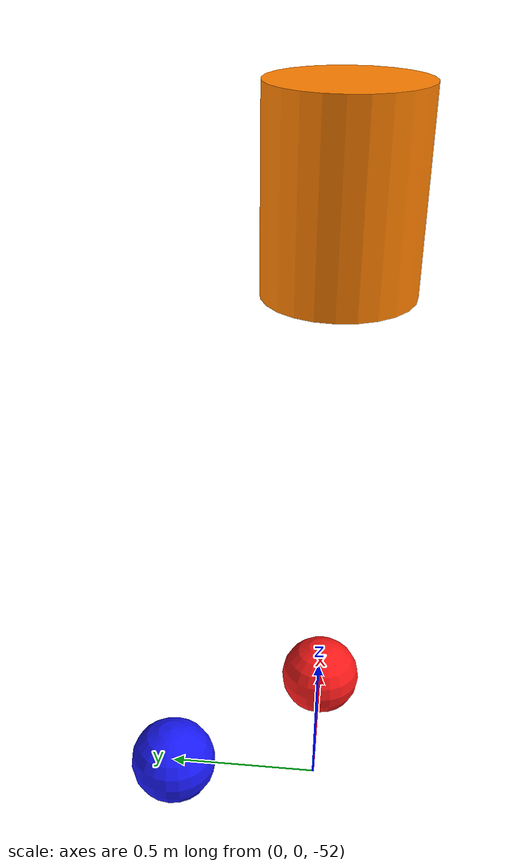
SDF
<?xml version="1.0" ?>
<sdf version="1.9">
  <world name="antarctic_ocean">

    <physics name="10ms" type="ignored">
      <max_step_size>0.01</max_step_size>
      <real_time_factor>1.0</real_time_factor>
    </physics>

    <!-- World systems. NO buoyancy, NO hydrodynamics. -->
    <plugin filename="gz-sim-physics-system"
            name="gz::sim::systems::Physics"/>
    <plugin filename="gz-sim-user-commands-system"
            name="gz::sim::systems::UserCommands"/>
    <plugin filename="gz-sim-scene-broadcaster-system"
            name="gz::sim::systems::SceneBroadcaster"/>
    <plugin filename="gz-sim-sensors-system"
            name="gz::sim::systems::Sensors">
      <render_engine>ogre2</render_engine>
    </plugin>

    <plugin filename="gz-sim-air-pressure-system"
            name="gz::sim::systems::AirPressure"/>

    <!-- Pose publisher: publishes every model's pose at 20 Hz so the
         depth helper can derive depth from the buoy's true Z. -->
    <plugin filename="gz-sim-pose-publisher-system"
            name="gz::sim::systems::PosePublisher">
      <publish_link_pose>false</publish_link_pose>
      <publish_model_pose>true</publish_model_pose>
      <publish_nested_model_pose>true</publish_nested_model_pose>
      <use_pose_vector_msg>false</use_pose_vector_msg>
      <update_frequency>20</update_frequency>
    </plugin>

    <scene>
      <ambient>0.0 0.02 0.08 1</ambient>
      <background>0.0 0.01 0.06 1</background>
      <fog>
        <type>exponential</type>
        <color>0.0 0.03 0.12 1</color>
        <density>0.07</density>
      </fog>
      <grid>false</grid>
    </scene>

    <!-- A weak overhead "surface light" so the upper water column is
         brighter than depth, mimicking attenuating downwelling PAR.
         Position is well above the buoy's operating depth. -->
    <light name="surface_sun" type="directional">
      <pose>0 0 50 0 0 0</pose>
      <diffuse>0.3 0.4 0.5 1</diffuse>
      <specular>0.1 0.15 0.2 1</specular>
      <direction>0 0 -1</direction>
      <cast_shadows>false</cast_shadows>
    </light>

    <include>
      <pose>0 0 -50 0 0 0</pose>
      <uri>model://sandy_buoy</uri>
    </include>

    <model name="phantom_red">
      <static>true</static>
      <pose>0.5 0 -52 0 0 0</pose>
      <link name="link">
        <visual name="visual">
          <geometry><sphere><radius>0.15</radius></sphere></geometry>
          <material>
            <ambient>1.0 0.05 0.05 1</ambient>
            <diffuse>1.0 0.1 0.1 1</diffuse>
            <emissive>0.8 0.0 0.0 1</emissive>
          </material>
        </visual>
      </link>
    </model>

    <model name="phantom_blue">
      <static>true</static>
      <pose>0 0.5 -52 0 0 0</pose>
      <link name="link">
        <visual name="visual">
          <geometry><sphere><radius>0.15</radius></sphere></geometry>
          <material>
            <ambient>0.05 0.05 1.0 1</ambient>
            <diffuse>0.1 0.1 1.0 1</diffuse>
            <emissive>0.0 0.0 0.8 1</emissive>
          </material>
        </visual>
      </link>
    </model>

    <!-- Optional: a reference grid plane far below for visual orientation
         when manually flying the camera around. Not visible to the buoy's
         sensors at typical operating depths. -->
    <model name="seafloor_ref">
      <static>true</static>
      <pose>0 0 -200 0 0 0</pose>
      <link name="link">
        <visual name="visual">
          <geometry><plane><normal>0 0 1</normal><size>100 100</size></plane></geometry>
          <material>
            <ambient>0.02 0.02 0.03 1</ambient>
            <diffuse>0.02 0.02 0.03 1</diffuse>
          </material>
        </visual>
      </link>
    </model>

  </world>
</sdf>

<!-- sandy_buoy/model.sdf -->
<sdf version="1.9">
  <model name="sandy_buoy">

    <!-- Kinematic: no physics, pose set externally. This is INTENTIONAL
         for sensor testing. Buoyancy/drag come back when you switch to
         dynamics testing later. -->
    <static>true</static>

    <link name="base_link">

      <!-- Visual: orange cylinder so you can see it in the GUI. -->
      <visual name="body_visual">
        <geometry>
          <cylinder><radius>0.2</radius><length>0.5</length></cylinder>
        </geometry>
        <material>
          <ambient>1.0 0.5 0.0 1</ambient>
          <diffuse>1.0 0.5 0.0 1</diffuse>
        </material>
      </visual>

      <sensor name="as7341_down" type="camera">
        <pose>0.05 0 -0.25  0 1.5708 0</pose>
        <camera>
          <horizontal_fov>1.047</horizontal_fov>  <!-- 60 deg -->
          <image>
            <width>8</width>
            <height>8</height>
            <format>R8G8B8</format>
          </image>
          <clip><near>0.05</near><far>50</far></clip>
        </camera>
        <always_on>1</always_on>
        <update_rate>10</update_rate>
        <visualize>true</visualize>
        <topic>sandy/as7341_down</topic>
      </sensor>

      <sensor name="photodiode_side" type="camera">
        <pose>0.2 0 0  0 0 0</pose>
        <camera>
          <horizontal_fov>0.2</horizontal_fov>
          <image>
            <width>4</width>
            <height>4</height>
            <format>R8G8B8</format>
          </image>
          <clip><near>0.05</near><far>20</far></clip>
        </camera>
        <always_on>1</always_on>
        <update_rate>10</update_rate>
        <visualize>true</visualize>
        <topic>sandy/photodiode_side</topic>
      </sensor>

      <light name="bpw34_excitation_led" type="spot">
        <pose>0.2 0 0  0 0 0</pose>
        <diffuse>0.1 0.3 1.0 1</diffuse>
        <specular>0.1 0.3 1.0 1</specular>
        <attenuation>
          <range>3</range>
          <constant>0.2</constant>
          <linear>0.3</linear>
        </attenuation>
        <spot>
          <inner_angle>0.15</inner_angle>
          <outer_angle>0.4</outer_angle>
          <falloff>1.0</falloff>
        </spot>
      </light>

      <!-- Pressure sensor placeholder. See note at top — actual depth
           is published by the helper node. Kept here so the topic exists
           for the bridge if you want to verify the pipeline. -->
      <sensor name="pressure_sensor" type="air_pressure">
        <always_on>1</always_on>
        <update_rate>10</update_rate>
        <topic>sandy/pressure_raw</topic>
        <air_pressure>
          <reference_altitude>0</reference_altitude>
        </air_pressure>
      </sensor>

    </link>
  </model>
</sdf>
